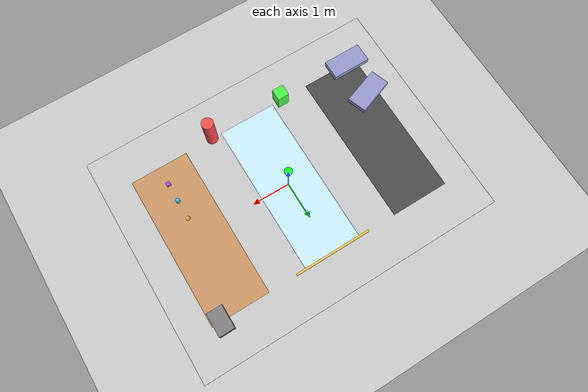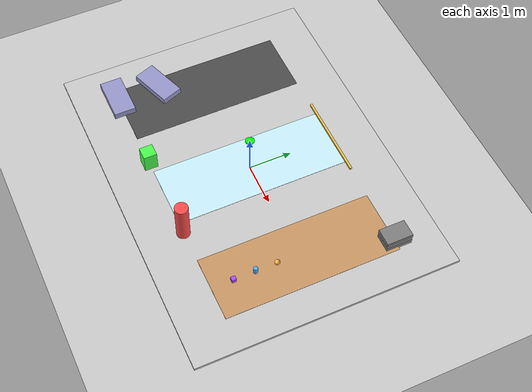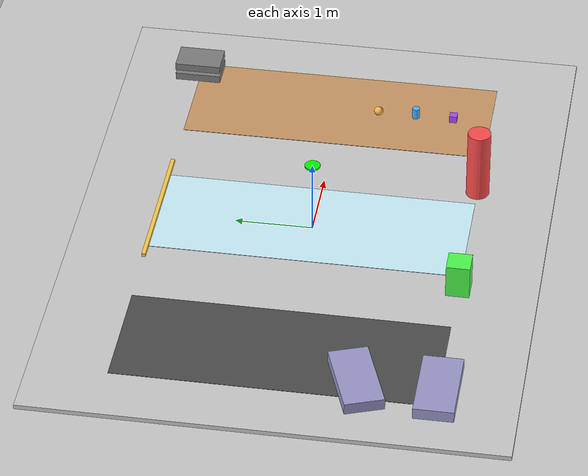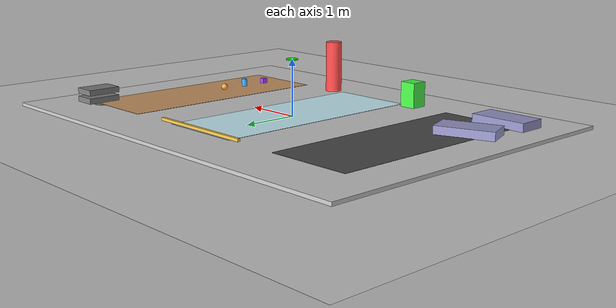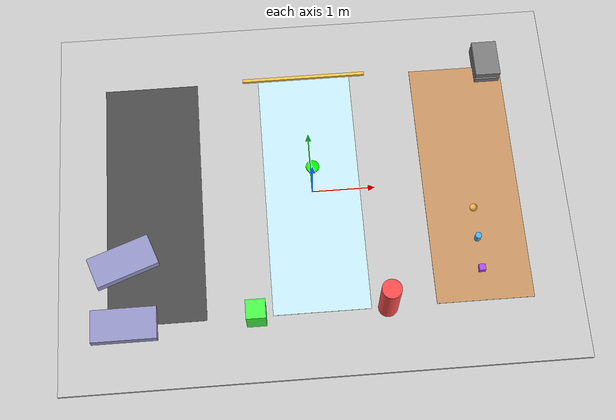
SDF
<?xml version="1.0" ?>
<sdf version="1.7">
  <world name="humanoid_lab">
    <!-- Physics Engine Configuration -->
    <physics type="ode">
      <gravity>0 0 -9.8</gravity>
      <max_step_size>0.001</max_step_size>
      <real_time_factor>1.0</real_time_factor>
      <real_time_update_rate>1000</real_time_update_rate>
      <ode>
        <solver>
          <type>quick</type>
          <iters>100</iters>
          <sor>1.3</sor>
        </solver>
        <constraints>
          <cfm>0.00001</cfm>
          <erp>0.2</erp>
          <contact_max_correcting_vel>100</contact_max_correcting_vel>
          <contact_surface_layer>0.001</contact_surface_layer>
        </constraints>
      </ode>
    </physics>

    <!-- Include standard models -->
    <include>
      <uri>model://ground_plane</uri>
    </include>

    <include>
      <uri>model://sun</uri>
    </include>

    <!-- Lab structure -->
    <!-- Main floor with different surface materials for testing -->
    <model name="main_floor">
      <pose>0 0 0 0 0 0</pose>
      <link name="floor_link">
        <collision name="collision">
          <geometry>
            <box>
              <size>8 6 0.1</size>
            </box>
          </geometry>
        </collision>
        <visual name="visual">
          <geometry>
            <box>
              <size>8 6 0.1</size>
            </box>
          </geometry>
          <material>
            <ambient>0.7 0.7 0.7 1</ambient>
            <diffuse>0.8 0.8 0.8 1</diffuse>
            <specular>0.1 0.1 0.1 1</specular>
          </material>
        </visual>
        <self_collide>0</self_collide>
        <enable_wind>0</enable_wind>
        <kinematic>0</kinematic>
      </link>
      <static>1</static>
    </model>

    <!-- Different test surfaces -->
    <!-- High friction surface (rubber-like) -->
    <model name="high_friction_surface">
      <pose>-2.5 0 0.05 0 0 0</pose>
      <link name="surface_link">
        <collision name="collision">
          <geometry>
            <box>
              <size>1.5 4 0.01</size>
            </box>
          </geometry>
          <surface>
            <friction>
              <ode>
                <mu>1.0</mu>
                <mu2>1.0</mu2>
              </ode>
            </friction>
          </surface>
        </collision>
        <visual name="visual">
          <geometry>
            <box>
              <size>1.5 4 0.01</size>
            </box>
          </geometry>
          <material>
            <ambient>0.2 0.2 0.2 1</ambient>
            <diffuse>0.3 0.3 0.3 1</diffuse>
            <specular>0.1 0.1 0.1 1</specular>
          </material>
        </visual>
        <self_collide>0</self_collide>
        <enable_wind>0</enable_wind>
        <kinematic>0</kinematic>
      </link>
      <static>1</static>
    </model>

    <!-- Low friction surface (ice-like) -->
    <model name="low_friction_surface">
      <pose>0 0 0.05 0 0 0</pose>
      <link name="surface_link">
        <collision name="collision">
          <geometry>
            <box>
              <size>1.5 4 0.01</size>
            </box>
          </geometry>
          <surface>
            <friction>
              <ode>
                <mu>0.1</mu>
                <mu2>0.1</mu2>
              </ode>
            </friction>
          </surface>
        </collision>
        <visual name="visual">
          <geometry>
            <box>
              <size>1.5 4 0.01</size>
            </box>
          </geometry>
          <material>
            <ambient>0.7 0.9 1.0 1</ambient>
            <diffuse>0.8 0.95 1.0 1</diffuse>
            <specular>0.8 0.9 1.0 1</specular>
          </material>
        </visual>
        <self_collide>0</self_collide>
        <enable_wind>0</enable_wind>
        <kinematic>0</kinematic>
      </link>
      <static>1</static>
    </model>

    <!-- Medium friction surface (wood-like) -->
    <model name="medium_friction_surface">
      <pose>2.5 0 0.05 0 0 0</pose>
      <link name="surface_link">
        <collision name="collision">
          <geometry>
            <box>
              <size>1.5 4 0.01</size>
            </box>
          </geometry>
          <surface>
            <friction>
              <ode>
                <mu>0.5</mu>
                <mu2>0.5</mu2>
              </ode>
            </friction>
          </surface>
        </collision>
        <visual name="visual">
          <geometry>
            <box>
              <size>1.5 4 0.01</size>
            </box>
          </geometry>
          <material>
            <ambient>0.6 0.4 0.2 1</ambient>
            <diffuse>0.8 0.6 0.4 1</diffuse>
            <specular>0.2 0.2 0.2 1</specular>
          </material>
        </visual>
        <self_collide>0</self_collide>
        <enable_wind>0</enable_wind>
        <kinematic>0</kinematic>
      </link>
      <static>1</static>
    </model>

    <!-- Ramps for testing balance and locomotion -->
    <model name="ramp_10_deg">
      <pose>-3 -2 0.1 0 0 0</pose>
      <link name="ramp_link">
        <collision name="collision">
          <geometry>
            <box>
              <size>1 0.5 0.2</size>
            </box>
          </geometry>
        </collision>
        <visual name="visual">
          <geometry>
            <box>
              <size>1 0.5 0.2</size>
            </box>
          </geometry>
          <material>
            <ambient>0.5 0.5 0.7 1</ambient>
            <diffuse>0.6 0.6 0.8 1</diffuse>
            <specular>0.2 0.2 0.2 1</specular>
          </material>
        </visual>
        <inertial>
          <mass>10.0</mass>
          <inertia>
            <ixx>0.42</ixx>
            <ixy>0</ixy>
            <ixz>0</ixz>
            <iyy>0.21</iyy>
            <iyz>0</iyz>
            <izz>0.21</izz>
          </inertia>
        </inertial>
      </link>
      <static>1</static>
    </model>

    <model name="ramp_20_deg">
      <pose>-3 -1 0.1 0 0 0.349</pose> <!-- 20 degrees in radians -->
      <link name="ramp_link">
        <collision name="collision">
          <geometry>
            <box>
              <size>1 0.5 0.2</size>
            </box>
          </geometry>
        </collision>
        <visual name="visual">
          <geometry>
            <box>
              <size>1 0.5 0.2</size>
            </box>
          </geometry>
          <material>
            <ambient>0.5 0.5 0.7 1</ambient>
            <diffuse>0.6 0.6 0.8 1</diffuse>
            <specular>0.2 0.2 0.2 1</specular>
          </material>
        </visual>
        <inertial>
          <mass>10.0</mass>
          <inertia>
            <ixx>0.42</ixx>
            <ixy>0</ixy>
            <ixz>0</ixz>
            <iyy>0.21</iyy>
            <iyz>0</iyz>
            <izz>0.21</izz>
          </inertia>
        </inertial>
      </link>
      <static>1</static>
    </model>

    <!-- Stairs for locomotion testing -->
    <model name="stairs">
      <pose>3 2 0 0 0 0</pose>
      <link name="step1">
        <collision name="collision">
          <geometry>
            <box>
              <size>0.4 0.6 0.1</size>
            </box>
          </geometry>
        </collision>
        <visual name="visual">
          <geometry>
            <box>
              <size>0.4 0.6 0.1</size>
            </box>
          </geometry>
          <material>
            <ambient>0.4 0.4 0.4 1</ambient>
            <diffuse>0.5 0.5 0.5 1</diffuse>
            <specular>0.2 0.2 0.2 1</specular>
          </material>
        </visual>
        <inertial>
          <mass>5.0</mass>
          <inertia>
            <ixx>0.158</ixx>
            <ixy>0</ixy>
            <ixz>0</ixz>
            <iyy>0.083</iyy>
            <iyz>0</iyz>
            <izz>0.083</izz>
          </inertia>
        </inertial>
      </link>
      <link name="step2">
        <pose>0 0 0.15 0 0 0</pose>
        <collision name="collision">
          <geometry>
            <box>
              <size>0.4 0.6 0.1</size>
            </box>
          </geometry>
        </collision>
        <visual name="visual">
          <geometry>
            <box>
              <size>0.4 0.6 0.1</size>
            </box>
          </geometry>
          <material>
            <ambient>0.4 0.4 0.4 1</ambient>
            <diffuse>0.5 0.5 0.5 1</diffuse>
            <specular>0.2 0.2 0.2 1</specular>
          </material>
        </visual>
        <inertial>
          <mass>5.0</mass>
          <inertia>
            <ixx>0.158</ixx>
            <ixy>0</ixy>
            <ixz>0</ixz>
            <iyy>0.083</iyy>
            <iyz>0</iyz>
            <izz>0.083</izz>
          </inertia>
        </inertial>
      </link>
      <link name="step3">
        <pose>0 0 0.3 0 0 0</pose>
        <collision name="collision">
          <geometry>
            <box>
              <size>0.4 0.6 0.1</size>
            </box>
          </geometry>
        </collision>
        <visual name="visual">
          <geometry>
            <box>
              <size>0.4 0.6 0.1</size>
            </box>
          </geometry>
          <material>
            <ambient>0.4 0.4 0.4 1</ambient>
            <diffuse>0.5 0.5 0.5 1</diffuse>
            <specular>0.2 0.2 0.2 1</specular>
          </material>
        </visual>
        <inertial>
          <mass>5.0</mass>
          <inertia>
            <ixx>0.158</ixx>
            <ixy>0</ixy>
            <ixz>0</ixz>
            <iyy>0.083</iyy>
            <iyz>0</iyz>
            <izz>0.083</izz>
          </inertia>
        </inertial>
      </link>
      <joint name="step1_to_step2" type="fixed">
        <parent>step1</parent>
        <child>step2</child>
      </joint>
      <joint name="step2_to_step3" type="fixed">
        <parent>step2</parent>
        <child>step3</child>
      </joint>
      <static>1</static>
    </model>

    <!-- Obstacles for navigation testing -->
    <model name="obstacle_cylinder">
      <pose>1 -2 0.5 0 0 0</pose>
      <link name="link">
        <collision name="collision">
          <geometry>
            <cylinder>
              <radius>0.15</radius>
              <length>1.0</length>
            </cylinder>
          </geometry>
        </collision>
        <visual name="visual">
          <geometry>
            <cylinder>
              <radius>0.15</radius>
              <length>1.0</length>
            </cylinder>
          </geometry>
          <material>
            <ambient>0.8 0.2 0.2 1</ambient>
            <diffuse>1.0 0.3 0.3 1</diffuse>
            <specular>0.5 0.5 0.5 1</specular>
          </material>
        </visual>
        <inertial>
          <mass>8.0</mass>
          <inertia>
            <ixx>0.225</ixx>
            <ixy>0</ixy>
            <ixz>0</ixz>
            <iyy>0.225</iyy>
            <iyz>0</iyz>
            <izz>0.09</izz>
          </inertia>
        </inertial>
      </link>
      <static>1</static>
    </model>

    <model name="obstacle_box">
      <pose>-1 -2 0.25 0 0 0</pose>
      <link name="link">
        <collision name="collision">
          <geometry>
            <box>
              <size>0.3 0.3 0.5</size>
            </box>
          </geometry>
        </collision>
        <visual name="visual">
          <geometry>
            <box>
              <size>0.3 0.3 0.5</size>
            </box>
          </geometry>
          <material>
            <ambient>0.2 0.8 0.2 1</ambient>
            <diffuse>0.3 1.0 0.3 1</diffuse>
            <specular>0.5 0.5 0.5 1</specular>
          </material>
        </visual>
        <inertial>
          <mass>6.0</mass>
          <inertia>
            <ixx>0.075</ixx>
            <ixy>0</ixy>
            <ixz>0</ixz>
            <iyy>0.075</iyy>
            <iyz>0</iyz>
            <izz>0.054</izz>
          </inertia>
        </inertial>
      </link>
      <static>1</static>
    </model>

    <!-- Balance beam for testing stability -->
    <model name="balance_beam">
      <pose>0 2 0.1 0 0 0</pose>
      <link name="link">
        <collision name="collision">
          <geometry>
            <box>
              <size>2.0 0.05 0.05</size>
            </box>
          </geometry>
        </collision>
        <visual name="visual">
          <geometry>
            <box>
              <size>2.0 0.05 0.05</size>
            </box>
          </geometry>
          <material>
            <ambient>0.8 0.6 0.2 1</ambient>
            <diffuse>1.0 0.8 0.3 1</diffuse>
            <specular>0.5 0.5 0.5 1</specular>
          </material>
        </visual>
        <inertial>
          <mass>2.0</mass>
          <inertia>
            <ixx>0.167</ixx>
            <ixy>0</ixy>
            <ixz>0</ixz>
            <iyy>0.0004</iyy>
            <iyz>0</iyz>
            <izz>0.167</izz>
          </inertia>
        </inertial>
      </link>
      <static>1</static>
    </model>

    <!-- Manipulation objects -->
    <!-- Small box for grasping -->
    <model name="grasp_box">
      <pose>2.5 -1.5 0.1 0 0 0</pose>
      <link name="link">
        <collision name="collision">
          <geometry>
            <box>
              <size>0.1 0.1 0.1</size>
            </box>
          </geometry>
        </collision>
        <visual name="visual">
          <geometry>
            <box>
              <size>0.1 0.1 0.1</size>
            </box>
          </geometry>
          <material>
            <ambient>0.5 0.2 0.8 1</ambient>
            <diffuse>0.7 0.3 1.0 1</diffuse>
            <specular>0.5 0.5 0.5 1</specular>
          </material>
        </visual>
        <inertial>
          <mass>0.2</mass>
          <inertia>
            <ixx>0.0003</ixx>
            <ixy>0</ixy>
            <ixz>0</ixz>
            <iyy>0.0003</iyy>
            <iyz>0</iyz>
            <izz>0.0003</izz>
          </inertia>
        </inertial>
      </link>
    </model>

    <!-- Cylinder for manipulation -->
    <model name="manip_cylinder">
      <pose>2.5 -1 0.1 0 0 0</pose>
      <link name="link">
        <collision name="collision">
          <geometry>
            <cylinder>
              <radius>0.05</radius>
              <length>0.2</length>
            </cylinder>
          </geometry>
        </collision>
        <visual name="visual">
          <geometry>
            <cylinder>
              <radius>0.05</radius>
              <length>0.2</length>
            </cylinder>
          </geometry>
          <material>
            <ambient>0.2 0.5 0.8 1</ambient>
            <diffuse>0.3 0.7 1.0 1</diffuse>
            <specular>0.5 0.5 0.5 1</specular>
          </material>
        </visual>
        <inertial>
          <mass>0.15</mass>
          <inertia>
            <ixx>0.0003</ixx>
            <ixy>0</ixy>
            <ixz>0</ixz>
            <iyy>0.0003</iyy>
            <iyz>0</iyz>
            <izz>0.0001</izz>
          </inertia>
        </inertial>
      </link>
    </model>

    <!-- Sphere for manipulation -->
    <model name="manip_sphere">
      <pose>2.5 -0.5 0.1 0 0 0</pose>
      <link name="link">
        <collision name="collision">
          <geometry>
            <sphere>
              <radius>0.06</radius>
            </sphere>
          </geometry>
        </collision>
        <visual name="visual">
          <geometry>
            <sphere>
              <radius>0.06</radius>
            </sphere>
          </geometry>
          <material>
            <ambient>0.8 0.5 0.2 1</ambient>
            <diffuse>1.0 0.7 0.3 1</diffuse>
            <specular>0.8 0.8 0.8 1</specular>
          </material>
        </visual>
        <inertial>
          <mass>0.1</mass>
          <inertia>
            <ixx>0.0001</ixx>
            <ixy>0</ixy>
            <ixz>0</ixz>
            <iyy>0.0001</iyy>
            <iyz>0</iyz>
            <izz>0.0001</izz>
          </inertia>
        </inertial>
      </link>
    </model>

    <!-- Marker for humanoid spawn position -->
    <model name="spawn_marker">
      <pose>0 0 1 0 0 0</pose>
      <link name="link">
        <visual name="visual">
          <geometry>
            <cylinder>
              <radius>0.1</radius>
              <length>0.02</length>
            </cylinder>
          </geometry>
          <material>
            <ambient>0 1 0 1</ambient>
            <diffuse>0 1 0 1</diffuse>
            <specular>0.5 0.5 0.5 1</specular>
          </material>
        </visual>
      </link>
      <static>1</static>
    </model>

    <!-- Lighting configuration -->
    <light name="main_light" type="directional">
      <pose>0 0 10 0 0 0</pose>
      <diffuse>0.8 0.8 0.8 1</diffuse>
      <specular>0.2 0.2 0.2 1</specular>
      <attenuation>
        <range>1000</range>
      </attenuation>
      <direction>-0.3 -0.3 -1</direction>
    </light>
  </world>
</sdf>
